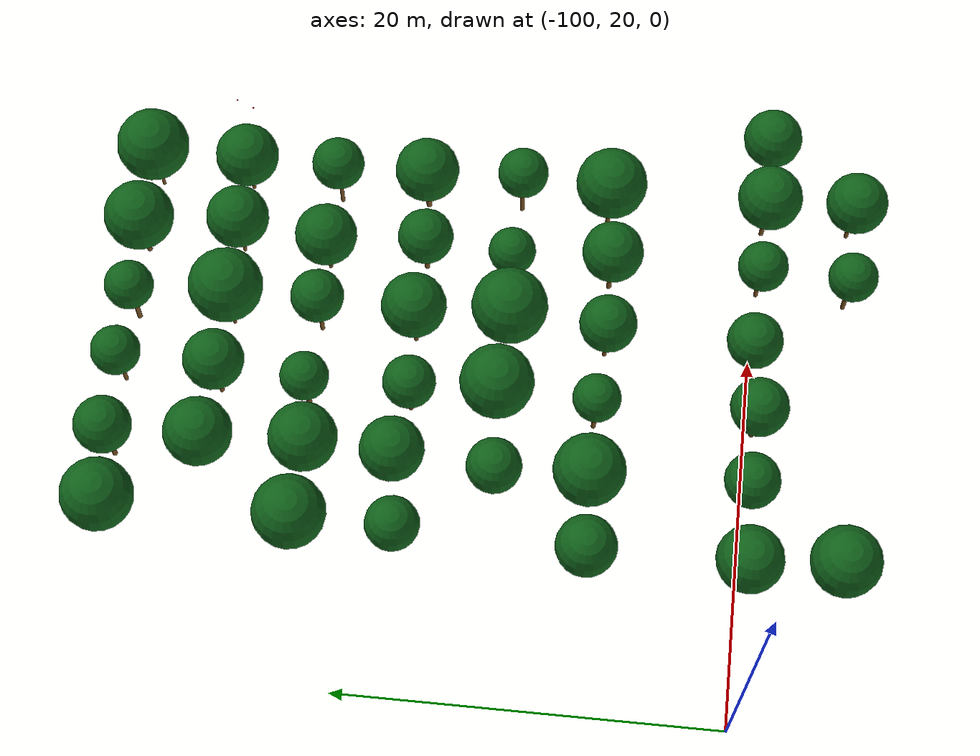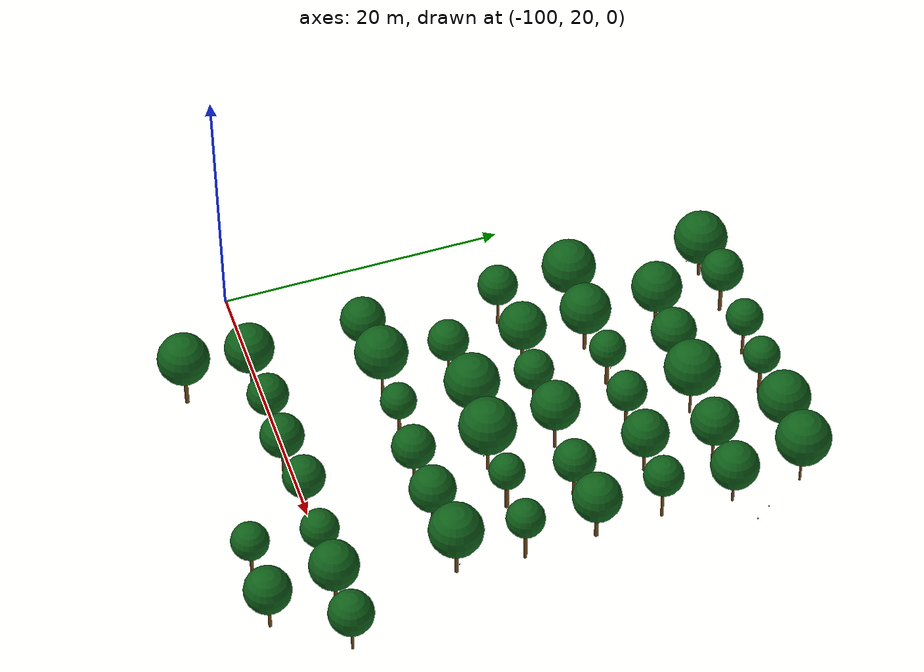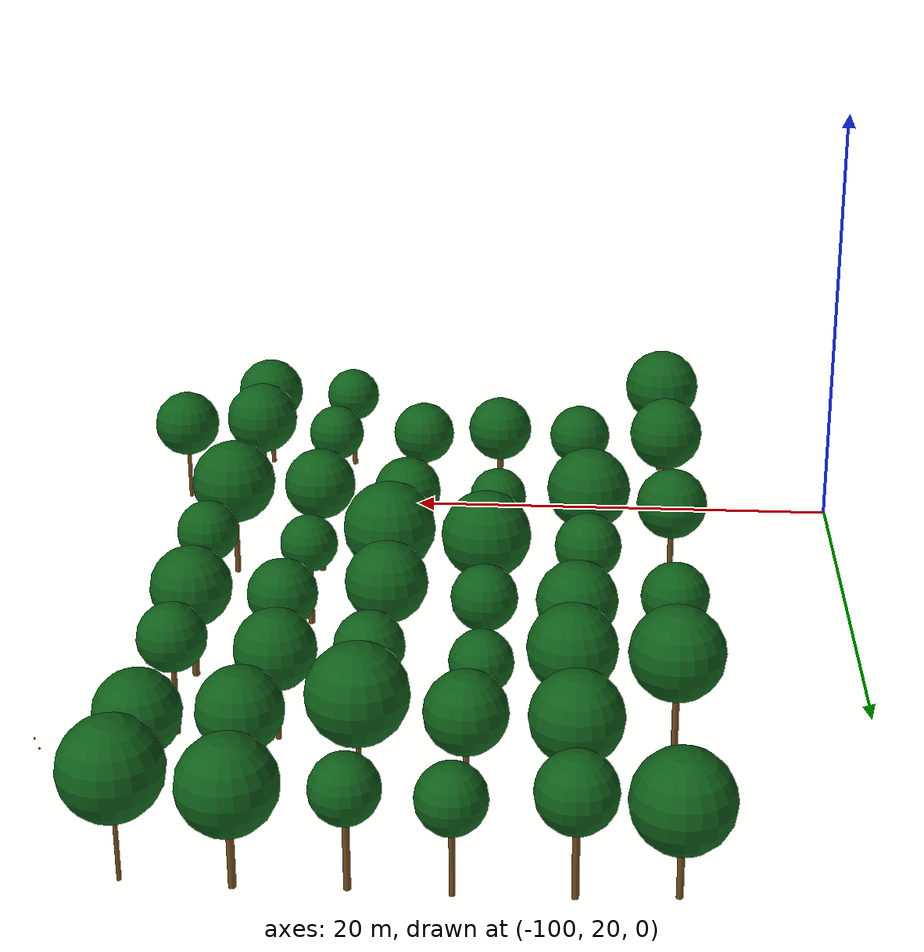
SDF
<sdf version="1.9">
 <world name="cheongsong_orchard">
  <model name="apple_tree_1373">
   <static>true</static>
   <pose>-92.01 14.98 0 0 0 0</pose>
   <link name="link">
    <collision name="trunk_col">
     <pose>0 0 1.40 0 0 0</pose>
     <geometry><cylinder><radius>0.148</radius><length>2.79</length></cylinder></geometry>
    </collision>
    <visual name="trunk_vis">
     <pose>0 0 1.40 0 0 0</pose>
     <geometry><cylinder><radius>0.148</radius><length>2.79</length></cylinder></geometry>
     <material><ambient>0.35 0.22 0.08 1</ambient><diffuse>0.45 0.30 0.12 1</diffuse></material>
    </visual>
    <collision name="canopy_col">
     <pose>0 0 4.61 0 0 0</pose>
     <geometry><sphere><radius>1.82</radius></sphere></geometry>
    </collision>
    <visual name="canopy_vis">
     <pose>0 0 4.61 0 0 0</pose>
     <geometry><sphere><radius>1.82</radius></sphere></geometry>
     <material><ambient>0.04 0.28 0.06 1</ambient><diffuse>0.06 0.38 0.10 1</diffuse></material>
    </visual>
   </link>
  </model>
  <model name="apple_tree_1377">
   <static>true</static>
   <pose>-76.20 15.09 0 0 0 0</pose>
   <link name="link">
    <collision name="trunk_col">
     <pose>0 0 1.27 0 0 0</pose>
     <geometry><cylinder><radius>0.125</radius><length>2.54</length></cylinder></geometry>
    </collision>
    <visual name="trunk_vis">
     <pose>0 0 1.27 0 0 0</pose>
     <geometry><cylinder><radius>0.125</radius><length>2.54</length></cylinder></geometry>
     <material><ambient>0.35 0.22 0.08 1</ambient><diffuse>0.45 0.30 0.12 1</diffuse></material>
    </visual>
    <collision name="canopy_col">
     <pose>0 0 3.85 0 0 0</pose>
     <geometry><sphere><radius>1.31</radius></sphere></geometry>
    </collision>
    <visual name="canopy_vis">
     <pose>0 0 3.85 0 0 0</pose>
     <geometry><sphere><radius>1.31</radius></sphere></geometry>
     <material><ambient>0.04 0.28 0.06 1</ambient><diffuse>0.06 0.38 0.10 1</diffuse></material>
    </visual>
   </link>
  </model>
  <model name="apple_tree_1378">
   <static>true</static>
   <pose>-71.92 15.06 0 0 0 0</pose>
   <link name="link">
    <collision name="trunk_col">
     <pose>0 0 1.16 0 0 0</pose>
     <geometry><cylinder><radius>0.118</radius><length>2.32</length></cylinder></geometry>
    </collision>
    <visual name="trunk_vis">
     <pose>0 0 1.16 0 0 0</pose>
     <geometry><cylinder><radius>0.118</radius><length>2.32</length></cylinder></geometry>
     <material><ambient>0.35 0.22 0.08 1</ambient><diffuse>0.45 0.30 0.12 1</diffuse></material>
    </visual>
    <collision name="canopy_col">
     <pose>0 0 3.95 0 0 0</pose>
     <geometry><sphere><radius>1.63</radius></sphere></geometry>
    </collision>
    <visual name="canopy_vis">
     <pose>0 0 3.95 0 0 0</pose>
     <geometry><sphere><radius>1.63</radius></sphere></geometry>
     <material><ambient>0.04 0.28 0.06 1</ambient><diffuse>0.06 0.38 0.10 1</diffuse></material>
    </visual>
   </link>
  </model>
  <model name="apple_tree_1425">
   <static>true</static>
   <pose>-92.13 19.64 0 0 0 0</pose>
   <link name="link">
    <collision name="trunk_col">
     <pose>0 0 1.08 0 0 0</pose>
     <geometry><cylinder><radius>0.093</radius><length>2.15</length></cylinder></geometry>
    </collision>
    <visual name="trunk_vis">
     <pose>0 0 1.08 0 0 0</pose>
     <geometry><cylinder><radius>0.093</radius><length>2.15</length></cylinder></geometry>
     <material><ambient>0.35 0.22 0.08 1</ambient><diffuse>0.45 0.30 0.12 1</diffuse></material>
    </visual>
    <collision name="canopy_col">
     <pose>0 0 3.90 0 0 0</pose>
     <geometry><sphere><radius>1.74</radius></sphere></geometry>
    </collision>
    <visual name="canopy_vis">
     <pose>0 0 3.90 0 0 0</pose>
     <geometry><sphere><radius>1.74</radius></sphere></geometry>
     <material><ambient>0.04 0.28 0.06 1</ambient><diffuse>0.06 0.38 0.10 1</diffuse></material>
    </visual>
   </link>
  </model>
  <model name="apple_tree_1426">
   <static>true</static>
   <pose>-87.92 19.73 0 0 0 0</pose>
   <link name="link">
    <collision name="trunk_col">
     <pose>0 0 1.15 0 0 0</pose>
     <geometry><cylinder><radius>0.101</radius><length>2.30</length></cylinder></geometry>
    </collision>
    <visual name="trunk_vis">
     <pose>0 0 1.15 0 0 0</pose>
     <geometry><cylinder><radius>0.101</radius><length>2.30</length></cylinder></geometry>
     <material><ambient>0.35 0.22 0.08 1</ambient><diffuse>0.45 0.30 0.12 1</diffuse></material>
    </visual>
    <collision name="canopy_col">
     <pose>0 0 3.75 0 0 0</pose>
     <geometry><sphere><radius>1.45</radius></sphere></geometry>
    </collision>
    <visual name="canopy_vis">
     <pose>0 0 3.75 0 0 0</pose>
     <geometry><sphere><radius>1.45</radius></sphere></geometry>
     <material><ambient>0.04 0.28 0.06 1</ambient><diffuse>0.06 0.38 0.10 1</diffuse></material>
    </visual>
   </link>
  </model>
  <model name="apple_tree_1427">
   <static>true</static>
   <pose>-84.00 19.59 0 0 0 0</pose>
   <link name="link">
    <collision name="trunk_col">
     <pose>0 0 1.22 0 0 0</pose>
     <geometry><cylinder><radius>0.150</radius><length>2.44</length></cylinder></geometry>
    </collision>
    <visual name="trunk_vis">
     <pose>0 0 1.22 0 0 0</pose>
     <geometry><cylinder><radius>0.150</radius><length>2.44</length></cylinder></geometry>
     <material><ambient>0.35 0.22 0.08 1</ambient><diffuse>0.45 0.30 0.12 1</diffuse></material>
    </visual>
    <collision name="canopy_col">
     <pose>0 0 3.97 0 0 0</pose>
     <geometry><sphere><radius>1.53</radius></sphere></geometry>
    </collision>
    <visual name="canopy_vis">
     <pose>0 0 3.97 0 0 0</pose>
     <geometry><sphere><radius>1.53</radius></sphere></geometry>
     <material><ambient>0.04 0.28 0.06 1</ambient><diffuse>0.06 0.38 0.10 1</diffuse></material>
    </visual>
   </link>
  </model>
  <model name="apple_tree_1428">
   <static>true</static>
   <pose>-80.28 20.01 0 0 0 0</pose>
   <link name="link">
    <collision name="trunk_col">
     <pose>0 0 1.18 0 0 0</pose>
     <geometry><cylinder><radius>0.148</radius><length>2.37</length></cylinder></geometry>
    </collision>
    <visual name="trunk_vis">
     <pose>0 0 1.18 0 0 0</pose>
     <geometry><cylinder><radius>0.148</radius><length>2.37</length></cylinder></geometry>
     <material><ambient>0.35 0.22 0.08 1</ambient><diffuse>0.45 0.30 0.12 1</diffuse></material>
    </visual>
    <collision name="canopy_col">
     <pose>0 0 3.83 0 0 0</pose>
     <geometry><sphere><radius>1.47</radius></sphere></geometry>
    </collision>
    <visual name="canopy_vis">
     <pose>0 0 3.83 0 0 0</pose>
     <geometry><sphere><radius>1.47</radius></sphere></geometry>
     <material><ambient>0.04 0.28 0.06 1</ambient><diffuse>0.06 0.38 0.10 1</diffuse></material>
    </visual>
   </link>
  </model>
  <model name="apple_tree_1429">
   <static>true</static>
   <pose>-75.93 19.79 0 0 0 0</pose>
   <link name="link">
    <collision name="trunk_col">
     <pose>0 0 1.16 0 0 0</pose>
     <geometry><cylinder><radius>0.119</radius><length>2.31</length></cylinder></geometry>
    </collision>
    <visual name="trunk_vis">
     <pose>0 0 1.16 0 0 0</pose>
     <geometry><cylinder><radius>0.119</radius><length>2.31</length></cylinder></geometry>
     <material><ambient>0.35 0.22 0.08 1</ambient><diffuse>0.45 0.30 0.12 1</diffuse></material>
    </visual>
    <collision name="canopy_col">
     <pose>0 0 3.64 0 0 0</pose>
     <geometry><sphere><radius>1.33</radius></sphere></geometry>
    </collision>
    <visual name="canopy_vis">
     <pose>0 0 3.64 0 0 0</pose>
     <geometry><sphere><radius>1.33</radius></sphere></geometry>
     <material><ambient>0.04 0.28 0.06 1</ambient><diffuse>0.06 0.38 0.10 1</diffuse></material>
    </visual>
   </link>
  </model>
  <model name="apple_tree_1430">
   <static>true</static>
   <pose>-72.23 19.68 0 0 0 0</pose>
   <link name="link">
    <collision name="trunk_col">
     <pose>0 0 1.30 0 0 0</pose>
     <geometry><cylinder><radius>0.128</radius><length>2.59</length></cylinder></geometry>
    </collision>
    <visual name="trunk_vis">
     <pose>0 0 1.30 0 0 0</pose>
     <geometry><cylinder><radius>0.128</radius><length>2.59</length></cylinder></geometry>
     <material><ambient>0.35 0.22 0.08 1</ambient><diffuse>0.45 0.30 0.12 1</diffuse></material>
    </visual>
    <collision name="canopy_col">
     <pose>0 0 4.30 0 0 0</pose>
     <geometry><sphere><radius>1.71</radius></sphere></geometry>
    </collision>
    <visual name="canopy_vis">
     <pose>0 0 4.30 0 0 0</pose>
     <geometry><sphere><radius>1.71</radius></sphere></geometry>
     <material><ambient>0.04 0.28 0.06 1</ambient><diffuse>0.06 0.38 0.10 1</diffuse></material>
    </visual>
   </link>
  </model>
  <model name="apple_tree_1431">
   <static>true</static>
   <pose>-68.47 19.68 0 0 0 0</pose>
   <link name="link">
    <collision name="trunk_col">
     <pose>0 0 1.18 0 0 0</pose>
     <geometry><cylinder><radius>0.096</radius><length>2.36</length></cylinder></geometry>
    </collision>
    <visual name="trunk_vis">
     <pose>0 0 1.18 0 0 0</pose>
     <geometry><cylinder><radius>0.096</radius><length>2.36</length></cylinder></geometry>
     <material><ambient>0.35 0.22 0.08 1</ambient><diffuse>0.45 0.30 0.12 1</diffuse></material>
    </visual>
    <collision name="canopy_col">
     <pose>0 0 3.92 0 0 0</pose>
     <geometry><sphere><radius>1.56</radius></sphere></geometry>
    </collision>
    <visual name="canopy_vis">
     <pose>0 0 3.92 0 0 0</pose>
     <geometry><sphere><radius>1.56</radius></sphere></geometry>
     <material><ambient>0.04 0.28 0.06 1</ambient><diffuse>0.06 0.38 0.10 1</diffuse></material>
    </visual>
   </link>
  </model>
  <model name="apple_tree_1475">
   <static>true</static>
   <pose>-92.20 27.80 0 0 0 0</pose>
   <link name="link">
    <collision name="trunk_col">
     <pose>0 0 1.11 0 0 0</pose>
     <geometry><cylinder><radius>0.134</radius><length>2.22</length></cylinder></geometry>
    </collision>
    <visual name="trunk_vis">
     <pose>0 0 1.11 0 0 0</pose>
     <geometry><cylinder><radius>0.134</radius><length>2.22</length></cylinder></geometry>
     <material><ambient>0.35 0.22 0.08 1</ambient><diffuse>0.45 0.30 0.12 1</diffuse></material>
    </visual>
    <collision name="canopy_col">
     <pose>0 0 3.81 0 0 0</pose>
     <geometry><sphere><radius>1.59</radius></sphere></geometry>
    </collision>
    <visual name="canopy_vis">
     <pose>0 0 3.81 0 0 0</pose>
     <geometry><sphere><radius>1.59</radius></sphere></geometry>
     <material><ambient>0.04 0.28 0.06 1</ambient><diffuse>0.06 0.38 0.10 1</diffuse></material>
    </visual>
   </link>
  </model>
  <model name="apple_tree_1476">
   <static>true</static>
   <pose>-88.43 27.97 0 0 0 0</pose>
   <link name="link">
    <collision name="trunk_col">
     <pose>0 0 1.32 0 0 0</pose>
     <geometry><cylinder><radius>0.105</radius><length>2.64</length></cylinder></geometry>
    </collision>
    <visual name="trunk_vis">
     <pose>0 0 1.32 0 0 0</pose>
     <geometry><cylinder><radius>0.105</radius><length>2.64</length></cylinder></geometry>
     <material><ambient>0.35 0.22 0.08 1</ambient><diffuse>0.45 0.30 0.12 1</diffuse></material>
    </visual>
    <collision name="canopy_col">
     <pose>0 0 4.51 0 0 0</pose>
     <geometry><sphere><radius>1.87</radius></sphere></geometry>
    </collision>
    <visual name="canopy_vis">
     <pose>0 0 4.51 0 0 0</pose>
     <geometry><sphere><radius>1.87</radius></sphere></geometry>
     <material><ambient>0.04 0.28 0.06 1</ambient><diffuse>0.06 0.38 0.10 1</diffuse></material>
    </visual>
   </link>
  </model>
  <model name="apple_tree_1477">
   <static>true</static>
   <pose>-84.34 27.90 0 0 0 0</pose>
   <link name="link">
    <collision name="trunk_col">
     <pose>0 0 1.39 0 0 0</pose>
     <geometry><cylinder><radius>0.129</radius><length>2.78</length></cylinder></geometry>
    </collision>
    <visual name="trunk_vis">
     <pose>0 0 1.39 0 0 0</pose>
     <geometry><cylinder><radius>0.129</radius><length>2.78</length></cylinder></geometry>
     <material><ambient>0.35 0.22 0.08 1</ambient><diffuse>0.45 0.30 0.12 1</diffuse></material>
    </visual>
    <collision name="canopy_col">
     <pose>0 0 4.04 0 0 0</pose>
     <geometry><sphere><radius>1.26</radius></sphere></geometry>
    </collision>
    <visual name="canopy_vis">
     <pose>0 0 4.04 0 0 0</pose>
     <geometry><sphere><radius>1.26</radius></sphere></geometry>
     <material><ambient>0.04 0.28 0.06 1</ambient><diffuse>0.06 0.38 0.10 1</diffuse></material>
    </visual>
   </link>
  </model>
  <model name="apple_tree_1478">
   <static>true</static>
   <pose>-80.19 27.64 0 0 0 0</pose>
   <link name="link">
    <collision name="trunk_col">
     <pose>0 0 1.30 0 0 0</pose>
     <geometry><cylinder><radius>0.113</radius><length>2.60</length></cylinder></geometry>
    </collision>
    <visual name="trunk_vis">
     <pose>0 0 1.30 0 0 0</pose>
     <geometry><cylinder><radius>0.113</radius><length>2.60</length></cylinder></geometry>
     <material><ambient>0.35 0.22 0.08 1</ambient><diffuse>0.45 0.30 0.12 1</diffuse></material>
    </visual>
    <collision name="canopy_col">
     <pose>0 0 4.11 0 0 0</pose>
     <geometry><sphere><radius>1.51</radius></sphere></geometry>
    </collision>
    <visual name="canopy_vis">
     <pose>0 0 4.11 0 0 0</pose>
     <geometry><sphere><radius>1.51</radius></sphere></geometry>
     <material><ambient>0.04 0.28 0.06 1</ambient><diffuse>0.06 0.38 0.10 1</diffuse></material>
    </visual>
   </link>
  </model>
  <model name="apple_tree_1479">
   <static>true</static>
   <pose>-76.20 27.71 0 0 0 0</pose>
   <link name="link">
    <collision name="trunk_col">
     <pose>0 0 1.37 0 0 0</pose>
     <geometry><cylinder><radius>0.133</radius><length>2.74</length></cylinder></geometry>
    </collision>
    <visual name="trunk_vis">
     <pose>0 0 1.37 0 0 0</pose>
     <geometry><cylinder><radius>0.133</radius><length>2.74</length></cylinder></geometry>
     <material><ambient>0.35 0.22 0.08 1</ambient><diffuse>0.45 0.30 0.12 1</diffuse></material>
    </visual>
    <collision name="canopy_col">
     <pose>0 0 4.35 0 0 0</pose>
     <geometry><sphere><radius>1.61</radius></sphere></geometry>
    </collision>
    <visual name="canopy_vis">
     <pose>0 0 4.35 0 0 0</pose>
     <geometry><sphere><radius>1.61</radius></sphere></geometry>
     <material><ambient>0.04 0.28 0.06 1</ambient><diffuse>0.06 0.38 0.10 1</diffuse></material>
    </visual>
   </link>
  </model>
  <model name="apple_tree_1480">
   <static>true</static>
   <pose>-72.30 28.08 0 0 0 0</pose>
   <link name="link">
    <collision name="trunk_col">
     <pose>0 0 1.32 0 0 0</pose>
     <geometry><cylinder><radius>0.126</radius><length>2.64</length></cylinder></geometry>
    </collision>
    <visual name="trunk_vis">
     <pose>0 0 1.32 0 0 0</pose>
     <geometry><cylinder><radius>0.126</radius><length>2.64</length></cylinder></geometry>
     <material><ambient>0.35 0.22 0.08 1</ambient><diffuse>0.45 0.30 0.12 1</diffuse></material>
    </visual>
    <collision name="canopy_col">
     <pose>0 0 4.52 0 0 0</pose>
     <geometry><sphere><radius>1.88</radius></sphere></geometry>
    </collision>
    <visual name="canopy_vis">
     <pose>0 0 4.52 0 0 0</pose>
     <geometry><sphere><radius>1.88</radius></sphere></geometry>
     <material><ambient>0.04 0.28 0.06 1</ambient><diffuse>0.06 0.38 0.10 1</diffuse></material>
    </visual>
   </link>
  </model>
  <model name="apple_tree_1528">
   <static>true</static>
   <pose>-88.47 32.78 0 0 0 0</pose>
   <link name="link">
    <collision name="trunk_col">
     <pose>0 0 1.25 0 0 0</pose>
     <geometry><cylinder><radius>0.081</radius><length>2.50</length></cylinder></geometry>
    </collision>
    <visual name="trunk_vis">
     <pose>0 0 1.25 0 0 0</pose>
     <geometry><cylinder><radius>0.081</radius><length>2.50</length></cylinder></geometry>
     <material><ambient>0.35 0.22 0.08 1</ambient><diffuse>0.45 0.30 0.12 1</diffuse></material>
    </visual>
    <collision name="canopy_col">
     <pose>0 0 3.94 0 0 0</pose>
     <geometry><sphere><radius>1.44</radius></sphere></geometry>
    </collision>
    <visual name="canopy_vis">
     <pose>0 0 3.94 0 0 0</pose>
     <geometry><sphere><radius>1.44</radius></sphere></geometry>
     <material><ambient>0.04 0.28 0.06 1</ambient><diffuse>0.06 0.38 0.10 1</diffuse></material>
    </visual>
   </link>
  </model>
  <model name="apple_tree_1529">
   <static>true</static>
   <pose>-84.10 33.05 0 0 0 0</pose>
   <link name="link">
    <collision name="trunk_col">
     <pose>0 0 1.28 0 0 0</pose>
     <geometry><cylinder><radius>0.083</radius><length>2.55</length></cylinder></geometry>
    </collision>
    <visual name="trunk_vis">
     <pose>0 0 1.28 0 0 0</pose>
     <geometry><cylinder><radius>0.083</radius><length>2.55</length></cylinder></geometry>
     <material><ambient>0.35 0.22 0.08 1</ambient><diffuse>0.45 0.30 0.12 1</diffuse></material>
    </visual>
    <collision name="canopy_col">
     <pose>0 0 4.48 0 0 0</pose>
     <geometry><sphere><radius>1.93</radius></sphere></geometry>
    </collision>
    <visual name="canopy_vis">
     <pose>0 0 4.48 0 0 0</pose>
     <geometry><sphere><radius>1.93</radius></sphere></geometry>
     <material><ambient>0.04 0.28 0.06 1</ambient><diffuse>0.06 0.38 0.10 1</diffuse></material>
    </visual>
   </link>
  </model>
  <model name="apple_tree_1530">
   <static>true</static>
   <pose>-79.91 32.79 0 0 0 0</pose>
   <link name="link">
    <collision name="trunk_col">
     <pose>0 0 1.33 0 0 0</pose>
     <geometry><cylinder><radius>0.099</radius><length>2.65</length></cylinder></geometry>
    </collision>
    <visual name="trunk_vis">
     <pose>0 0 1.33 0 0 0</pose>
     <geometry><cylinder><radius>0.099</radius><length>2.65</length></cylinder></geometry>
     <material><ambient>0.35 0.22 0.08 1</ambient><diffuse>0.45 0.30 0.12 1</diffuse></material>
    </visual>
    <collision name="canopy_col">
     <pose>0 0 4.64 0 0 0</pose>
     <geometry><sphere><radius>1.99</radius></sphere></geometry>
    </collision>
    <visual name="canopy_vis">
     <pose>0 0 4.64 0 0 0</pose>
     <geometry><sphere><radius>1.99</radius></sphere></geometry>
     <material><ambient>0.04 0.28 0.06 1</ambient><diffuse>0.06 0.38 0.10 1</diffuse></material>
    </visual>
   </link>
  </model>
  <model name="apple_tree_1531">
   <static>true</static>
   <pose>-76.41 32.98 0 0 0 0</pose>
   <link name="link">
    <collision name="trunk_col">
     <pose>0 0 1.30 0 0 0</pose>
     <geometry><cylinder><radius>0.145</radius><length>2.59</length></cylinder></geometry>
    </collision>
    <visual name="trunk_vis">
     <pose>0 0 1.30 0 0 0</pose>
     <geometry><cylinder><radius>0.145</radius><length>2.59</length></cylinder></geometry>
     <material><ambient>0.35 0.22 0.08 1</ambient><diffuse>0.45 0.30 0.12 1</diffuse></material>
    </visual>
    <collision name="canopy_col">
     <pose>0 0 3.85 0 0 0</pose>
     <geometry><sphere><radius>1.25</radius></sphere></geometry>
    </collision>
    <visual name="canopy_vis">
     <pose>0 0 3.85 0 0 0</pose>
     <geometry><sphere><radius>1.25</radius></sphere></geometry>
     <material><ambient>0.04 0.28 0.06 1</ambient><diffuse>0.06 0.38 0.10 1</diffuse></material>
    </visual>
   </link>
  </model>
  <model name="apple_tree_1532">
   <static>true</static>
   <pose>-71.99 32.80 0 0 0 0</pose>
   <link name="link">
    <collision name="trunk_col">
     <pose>0 0 1.44 0 0 0</pose>
     <geometry><cylinder><radius>0.122</radius><length>2.89</length></cylinder></geometry>
    </collision>
    <visual name="trunk_vis">
     <pose>0 0 1.44 0 0 0</pose>
     <geometry><cylinder><radius>0.122</radius><length>2.89</length></cylinder></geometry>
     <material><ambient>0.35 0.22 0.08 1</ambient><diffuse>0.45 0.30 0.12 1</diffuse></material>
    </visual>
    <collision name="canopy_col">
     <pose>0 0 4.23 0 0 0</pose>
     <geometry><sphere><radius>1.34</radius></sphere></geometry>
    </collision>
    <visual name="canopy_vis">
     <pose>0 0 4.23 0 0 0</pose>
     <geometry><sphere><radius>1.34</radius></sphere></geometry>
     <material><ambient>0.04 0.28 0.06 1</ambient><diffuse>0.06 0.38 0.10 1</diffuse></material>
    </visual>
   </link>
  </model>
  <model name="apple_tree_1581">
   <static>true</static>
   <pose>-92.06 37.55 0 0 0 0</pose>
   <link name="link">
    <collision name="trunk_col">
     <pose>0 0 1.32 0 0 0</pose>
     <geometry><cylinder><radius>0.098</radius><length>2.65</length></cylinder></geometry>
    </collision>
    <visual name="trunk_vis">
     <pose>0 0 1.32 0 0 0</pose>
     <geometry><cylinder><radius>0.098</radius><length>2.65</length></cylinder></geometry>
     <material><ambient>0.35 0.22 0.08 1</ambient><diffuse>0.45 0.30 0.12 1</diffuse></material>
    </visual>
    <collision name="canopy_col">
     <pose>0 0 4.05 0 0 0</pose>
     <geometry><sphere><radius>1.41</radius></sphere></geometry>
    </collision>
    <visual name="canopy_vis">
     <pose>0 0 4.05 0 0 0</pose>
     <geometry><sphere><radius>1.41</radius></sphere></geometry>
     <material><ambient>0.04 0.28 0.06 1</ambient><diffuse>0.06 0.38 0.10 1</diffuse></material>
    </visual>
   </link>
  </model>
  <model name="apple_tree_1582">
   <static>true</static>
   <pose>-88.08 38.02 0 0 0 0</pose>
   <link name="link">
    <collision name="trunk_col">
     <pose>0 0 1.15 0 0 0</pose>
     <geometry><cylinder><radius>0.130</radius><length>2.29</length></cylinder></geometry>
    </collision>
    <visual name="trunk_vis">
     <pose>0 0 1.15 0 0 0</pose>
     <geometry><cylinder><radius>0.130</radius><length>2.29</length></cylinder></geometry>
     <material><ambient>0.35 0.22 0.08 1</ambient><diffuse>0.45 0.30 0.12 1</diffuse></material>
    </visual>
    <collision name="canopy_col">
     <pose>0 0 3.97 0 0 0</pose>
     <geometry><sphere><radius>1.68</radius></sphere></geometry>
    </collision>
    <visual name="canopy_vis">
     <pose>0 0 3.97 0 0 0</pose>
     <geometry><sphere><radius>1.68</radius></sphere></geometry>
     <material><ambient>0.04 0.28 0.06 1</ambient><diffuse>0.06 0.38 0.10 1</diffuse></material>
    </visual>
   </link>
  </model>
  <model name="apple_tree_1583">
   <static>true</static>
   <pose>-84.28 37.56 0 0 0 0</pose>
   <link name="link">
    <collision name="trunk_col">
     <pose>0 0 1.19 0 0 0</pose>
     <geometry><cylinder><radius>0.116</radius><length>2.38</length></cylinder></geometry>
    </collision>
    <visual name="trunk_vis">
     <pose>0 0 1.19 0 0 0</pose>
     <geometry><cylinder><radius>0.116</radius><length>2.38</length></cylinder></geometry>
     <material><ambient>0.35 0.22 0.08 1</ambient><diffuse>0.45 0.30 0.12 1</diffuse></material>
    </visual>
    <collision name="canopy_col">
     <pose>0 0 3.77 0 0 0</pose>
     <geometry><sphere><radius>1.39</radius></sphere></geometry>
    </collision>
    <visual name="canopy_vis">
     <pose>0 0 3.77 0 0 0</pose>
     <geometry><sphere><radius>1.39</radius></sphere></geometry>
     <material><ambient>0.04 0.28 0.06 1</ambient><diffuse>0.06 0.38 0.10 1</diffuse></material>
    </visual>
   </link>
  </model>
  <model name="apple_tree_1584">
   <static>true</static>
   <pose>-80.29 37.73 0 0 0 0</pose>
   <link name="link">
    <collision name="trunk_col">
     <pose>0 0 1.38 0 0 0</pose>
     <geometry><cylinder><radius>0.109</radius><length>2.75</length></cylinder></geometry>
    </collision>
    <visual name="trunk_vis">
     <pose>0 0 1.38 0 0 0</pose>
     <geometry><cylinder><radius>0.109</radius><length>2.75</length></cylinder></geometry>
     <material><ambient>0.35 0.22 0.08 1</ambient><diffuse>0.45 0.30 0.12 1</diffuse></material>
    </visual>
    <collision name="canopy_col">
     <pose>0 0 4.47 0 0 0</pose>
     <geometry><sphere><radius>1.71</radius></sphere></geometry>
    </collision>
    <visual name="canopy_vis">
     <pose>0 0 4.47 0 0 0</pose>
     <geometry><sphere><radius>1.71</radius></sphere></geometry>
     <material><ambient>0.04 0.28 0.06 1</ambient><diffuse>0.06 0.38 0.10 1</diffuse></material>
    </visual>
   </link>
  </model>
  <model name="apple_tree_1585">
   <static>true</static>
   <pose>-75.96 37.60 0 0 0 0</pose>
   <link name="link">
    <collision name="trunk_col">
     <pose>0 0 1.13 0 0 0</pose>
     <geometry><cylinder><radius>0.135</radius><length>2.27</length></cylinder></geometry>
    </collision>
    <visual name="trunk_vis">
     <pose>0 0 1.13 0 0 0</pose>
     <geometry><cylinder><radius>0.135</radius><length>2.27</length></cylinder></geometry>
     <material><ambient>0.35 0.22 0.08 1</ambient><diffuse>0.45 0.30 0.12 1</diffuse></material>
    </visual>
    <collision name="canopy_col">
     <pose>0 0 3.74 0 0 0</pose>
     <geometry><sphere><radius>1.47</radius></sphere></geometry>
    </collision>
    <visual name="canopy_vis">
     <pose>0 0 3.74 0 0 0</pose>
     <geometry><sphere><radius>1.47</radius></sphere></geometry>
     <material><ambient>0.04 0.28 0.06 1</ambient><diffuse>0.06 0.38 0.10 1</diffuse></material>
    </visual>
   </link>
  </model>
  <model name="apple_tree_1586">
   <static>true</static>
   <pose>-72.24 37.90 0 0 0 0</pose>
   <link name="link">
    <collision name="trunk_col">
     <pose>0 0 1.20 0 0 0</pose>
     <geometry><cylinder><radius>0.148</radius><length>2.41</length></cylinder></geometry>
    </collision>
    <visual name="trunk_vis">
     <pose>0 0 1.20 0 0 0</pose>
     <geometry><cylinder><radius>0.148</radius><length>2.41</length></cylinder></geometry>
     <material><ambient>0.35 0.22 0.08 1</ambient><diffuse>0.45 0.30 0.12 1</diffuse></material>
    </visual>
    <collision name="canopy_col">
     <pose>0 0 4.11 0 0 0</pose>
     <geometry><sphere><radius>1.70</radius></sphere></geometry>
    </collision>
    <visual name="canopy_vis">
     <pose>0 0 4.11 0 0 0</pose>
     <geometry><sphere><radius>1.70</radius></sphere></geometry>
     <material><ambient>0.04 0.28 0.06 1</ambient><diffuse>0.06 0.38 0.10 1</diffuse></material>
    </visual>
   </link>
  </model>
  <model name="apple_tree_1638">
   <static>true</static>
   <pose>-92.00 42.74 0 0 0 0</pose>
   <link name="link">
    <collision name="trunk_col">
     <pose>0 0 1.17 0 0 0</pose>
     <geometry><cylinder><radius>0.137</radius><length>2.34</length></cylinder></geometry>
    </collision>
    <visual name="trunk_vis">
     <pose>0 0 1.17 0 0 0</pose>
     <geometry><cylinder><radius>0.137</radius><length>2.34</length></cylinder></geometry>
     <material><ambient>0.35 0.22 0.08 1</ambient><diffuse>0.45 0.30 0.12 1</diffuse></material>
    </visual>
    <collision name="canopy_col">
     <pose>0 0 4.24 0 0 0</pose>
     <geometry><sphere><radius>1.90</radius></sphere></geometry>
    </collision>
    <visual name="canopy_vis">
     <pose>0 0 4.24 0 0 0</pose>
     <geometry><sphere><radius>1.90</radius></sphere></geometry>
     <material><ambient>0.04 0.28 0.06 1</ambient><diffuse>0.06 0.38 0.10 1</diffuse></material>
    </visual>
   </link>
  </model>
  <model name="apple_tree_1639">
   <static>true</static>
   <pose>-87.97 42.56 0 0 0 0</pose>
   <link name="link">
    <collision name="trunk_col">
     <pose>0 0 1.22 0 0 0</pose>
     <geometry><cylinder><radius>0.129</radius><length>2.44</length></cylinder></geometry>
    </collision>
    <visual name="trunk_vis">
     <pose>0 0 1.22 0 0 0</pose>
     <geometry><cylinder><radius>0.129</radius><length>2.44</length></cylinder></geometry>
     <material><ambient>0.35 0.22 0.08 1</ambient><diffuse>0.45 0.30 0.12 1</diffuse></material>
    </visual>
    <collision name="canopy_col">
     <pose>0 0 4.23 0 0 0</pose>
     <geometry><sphere><radius>1.79</radius></sphere></geometry>
    </collision>
    <visual name="canopy_vis">
     <pose>0 0 4.23 0 0 0</pose>
     <geometry><sphere><radius>1.79</radius></sphere></geometry>
     <material><ambient>0.04 0.28 0.06 1</ambient><diffuse>0.06 0.38 0.10 1</diffuse></material>
    </visual>
   </link>
  </model>
  <model name="apple_tree_1640">
   <static>true</static>
   <pose>-84.48 42.96 0 0 0 0</pose>
   <link name="link">
    <collision name="trunk_col">
     <pose>0 0 1.24 0 0 0</pose>
     <geometry><cylinder><radius>0.144</radius><length>2.48</length></cylinder></geometry>
    </collision>
    <visual name="trunk_vis">
     <pose>0 0 1.24 0 0 0</pose>
     <geometry><cylinder><radius>0.144</radius><length>2.48</length></cylinder></geometry>
     <material><ambient>0.35 0.22 0.08 1</ambient><diffuse>0.45 0.30 0.12 1</diffuse></material>
    </visual>
    <collision name="canopy_col">
     <pose>0 0 3.75 0 0 0</pose>
     <geometry><sphere><radius>1.28</radius></sphere></geometry>
    </collision>
    <visual name="canopy_vis">
     <pose>0 0 3.75 0 0 0</pose>
     <geometry><sphere><radius>1.28</radius></sphere></geometry>
     <material><ambient>0.04 0.28 0.06 1</ambient><diffuse>0.06 0.38 0.10 1</diffuse></material>
    </visual>
   </link>
  </model>
  <model name="apple_tree_1641">
   <static>true</static>
   <pose>-80.15 42.80 0 0 0 0</pose>
   <link name="link">
    <collision name="trunk_col">
     <pose>0 0 1.42 0 0 0</pose>
     <geometry><cylinder><radius>0.117</radius><length>2.83</length></cylinder></geometry>
    </collision>
    <visual name="trunk_vis">
     <pose>0 0 1.42 0 0 0</pose>
     <geometry><cylinder><radius>0.117</radius><length>2.83</length></cylinder></geometry>
     <material><ambient>0.35 0.22 0.08 1</ambient><diffuse>0.45 0.30 0.12 1</diffuse></material>
    </visual>
    <collision name="canopy_col">
     <pose>0 0 4.23 0 0 0</pose>
     <geometry><sphere><radius>1.40</radius></sphere></geometry>
    </collision>
    <visual name="canopy_vis">
     <pose>0 0 4.23 0 0 0</pose>
     <geometry><sphere><radius>1.40</radius></sphere></geometry>
     <material><ambient>0.04 0.28 0.06 1</ambient><diffuse>0.06 0.38 0.10 1</diffuse></material>
    </visual>
   </link>
  </model>
  <model name="apple_tree_1642">
   <static>true</static>
   <pose>-76.48 42.81 0 0 0 0</pose>
   <link name="link">
    <collision name="trunk_col">
     <pose>0 0 1.17 0 0 0</pose>
     <geometry><cylinder><radius>0.106</radius><length>2.33</length></cylinder></geometry>
    </collision>
    <visual name="trunk_vis">
     <pose>0 0 1.17 0 0 0</pose>
     <geometry><cylinder><radius>0.106</radius><length>2.33</length></cylinder></geometry>
     <material><ambient>0.35 0.22 0.08 1</ambient><diffuse>0.45 0.30 0.12 1</diffuse></material>
    </visual>
    <collision name="canopy_col">
     <pose>0 0 3.97 0 0 0</pose>
     <geometry><sphere><radius>1.64</radius></sphere></geometry>
    </collision>
    <visual name="canopy_vis">
     <pose>0 0 3.97 0 0 0</pose>
     <geometry><sphere><radius>1.64</radius></sphere></geometry>
     <material><ambient>0.04 0.28 0.06 1</ambient><diffuse>0.06 0.38 0.10 1</diffuse></material>
    </visual>
   </link>
  </model>
  <model name="apple_tree_1643">
   <static>true</static>
   <pose>-72.42 42.64 0 0 0 0</pose>
   <link name="link">
    <collision name="trunk_col">
     <pose>0 0 1.45 0 0 0</pose>
     <geometry><cylinder><radius>0.108</radius><length>2.90</length></cylinder></geometry>
    </collision>
    <visual name="trunk_vis">
     <pose>0 0 1.45 0 0 0</pose>
     <geometry><cylinder><radius>0.108</radius><length>2.90</length></cylinder></geometry>
     <material><ambient>0.35 0.22 0.08 1</ambient><diffuse>0.45 0.30 0.12 1</diffuse></material>
    </visual>
    <collision name="canopy_col">
     <pose>0 0 4.29 0 0 0</pose>
     <geometry><sphere><radius>1.39</radius></sphere></geometry>
    </collision>
    <visual name="canopy_vis">
     <pose>0 0 4.29 0 0 0</pose>
     <geometry><sphere><radius>1.39</radius></sphere></geometry>
     <material><ambient>0.04 0.28 0.06 1</ambient><diffuse>0.06 0.38 0.10 1</diffuse></material>
    </visual>
   </link>
  </model>
  <model name="apple_tree_1695">
   <static>true</static>
   <pose>-88.23 47.88 0 0 0 0</pose>
   <link name="link">
    <collision name="trunk_col">
     <pose>0 0 1.26 0 0 0</pose>
     <geometry><cylinder><radius>0.129</radius><length>2.53</length></cylinder></geometry>
    </collision>
    <visual name="trunk_vis">
     <pose>0 0 1.26 0 0 0</pose>
     <geometry><cylinder><radius>0.129</radius><length>2.53</length></cylinder></geometry>
     <material><ambient>0.35 0.22 0.08 1</ambient><diffuse>0.45 0.30 0.12 1</diffuse></material>
    </visual>
    <collision name="canopy_col">
     <pose>0 0 4.31 0 0 0</pose>
     <geometry><sphere><radius>1.78</radius></sphere></geometry>
    </collision>
    <visual name="canopy_vis">
     <pose>0 0 4.31 0 0 0</pose>
     <geometry><sphere><radius>1.78</radius></sphere></geometry>
     <material><ambient>0.04 0.28 0.06 1</ambient><diffuse>0.06 0.38 0.10 1</diffuse></material>
    </visual>
   </link>
  </model>
  <model name="apple_tree_1696">
   <static>true</static>
   <pose>-84.21 47.66 0 0 0 0</pose>
   <link name="link">
    <collision name="trunk_col">
     <pose>0 0 1.33 0 0 0</pose>
     <geometry><cylinder><radius>0.122</radius><length>2.66</length></cylinder></geometry>
    </collision>
    <visual name="trunk_vis">
     <pose>0 0 1.33 0 0 0</pose>
     <geometry><cylinder><radius>0.122</radius><length>2.66</length></cylinder></geometry>
     <material><ambient>0.35 0.22 0.08 1</ambient><diffuse>0.45 0.30 0.12 1</diffuse></material>
    </visual>
    <collision name="canopy_col">
     <pose>0 0 4.24 0 0 0</pose>
     <geometry><sphere><radius>1.59</radius></sphere></geometry>
    </collision>
    <visual name="canopy_vis">
     <pose>0 0 4.24 0 0 0</pose>
     <geometry><sphere><radius>1.59</radius></sphere></geometry>
     <material><ambient>0.04 0.28 0.06 1</ambient><diffuse>0.06 0.38 0.10 1</diffuse></material>
    </visual>
   </link>
  </model>
  <model name="apple_tree_1697">
   <static>true</static>
   <pose>-80.25 47.53 0 0 0 0</pose>
   <link name="link">
    <collision name="trunk_col">
     <pose>0 0 1.43 0 0 0</pose>
     <geometry><cylinder><radius>0.096</radius><length>2.86</length></cylinder></geometry>
    </collision>
    <visual name="trunk_vis">
     <pose>0 0 1.43 0 0 0</pose>
     <geometry><cylinder><radius>0.096</radius><length>2.86</length></cylinder></geometry>
     <material><ambient>0.35 0.22 0.08 1</ambient><diffuse>0.45 0.30 0.12 1</diffuse></material>
    </visual>
    <collision name="canopy_col">
     <pose>0 0 4.80 0 0 0</pose>
     <geometry><sphere><radius>1.95</radius></sphere></geometry>
    </collision>
    <visual name="canopy_vis">
     <pose>0 0 4.80 0 0 0</pose>
     <geometry><sphere><radius>1.95</radius></sphere></geometry>
     <material><ambient>0.04 0.28 0.06 1</ambient><diffuse>0.06 0.38 0.10 1</diffuse></material>
    </visual>
   </link>
  </model>
  <model name="apple_tree_1698">
   <static>true</static>
   <pose>-75.93 47.58 0 0 0 0</pose>
   <link name="link">
    <collision name="trunk_col">
     <pose>0 0 1.18 0 0 0</pose>
     <geometry><cylinder><radius>0.099</radius><length>2.37</length></cylinder></geometry>
    </collision>
    <visual name="trunk_vis">
     <pose>0 0 1.18 0 0 0</pose>
     <geometry><cylinder><radius>0.099</radius><length>2.37</length></cylinder></geometry>
     <material><ambient>0.35 0.22 0.08 1</ambient><diffuse>0.45 0.30 0.12 1</diffuse></material>
    </visual>
    <collision name="canopy_col">
     <pose>0 0 4.03 0 0 0</pose>
     <geometry><sphere><radius>1.66</radius></sphere></geometry>
    </collision>
    <visual name="canopy_vis">
     <pose>0 0 4.03 0 0 0</pose>
     <geometry><sphere><radius>1.66</radius></sphere></geometry>
     <material><ambient>0.04 0.28 0.06 1</ambient><diffuse>0.06 0.38 0.10 1</diffuse></material>
    </visual>
   </link>
  </model>
  <model name="apple_tree_1699">
   <static>true</static>
   <pose>-72.13 47.61 0 0 0 0</pose>
   <link name="link">
    <collision name="trunk_col">
     <pose>0 0 1.06 0 0 0</pose>
     <geometry><cylinder><radius>0.101</radius><length>2.11</length></cylinder></geometry>
    </collision>
    <visual name="trunk_vis">
     <pose>0 0 1.06 0 0 0</pose>
     <geometry><cylinder><radius>0.101</radius><length>2.11</length></cylinder></geometry>
     <material><ambient>0.35 0.22 0.08 1</ambient><diffuse>0.45 0.30 0.12 1</diffuse></material>
    </visual>
    <collision name="canopy_col">
     <pose>0 0 3.79 0 0 0</pose>
     <geometry><sphere><radius>1.68</radius></sphere></geometry>
    </collision>
    <visual name="canopy_vis">
     <pose>0 0 3.79 0 0 0</pose>
     <geometry><sphere><radius>1.68</radius></sphere></geometry>
     <material><ambient>0.04 0.28 0.06 1</ambient><diffuse>0.06 0.38 0.10 1</diffuse></material>
    </visual>
   </link>
  </model>
  <model name="apple_tree_1750">
   <static>true</static>
   <pose>-91.91 52.51 0 0 0 0</pose>
   <link name="link">
    <collision name="trunk_col">
     <pose>0 0 0.99 0 0 0</pose>
     <geometry><cylinder><radius>0.127</radius><length>1.98</length></cylinder></geometry>
    </collision>
    <visual name="trunk_vis">
     <pose>0 0 0.99 0 0 0</pose>
     <geometry><cylinder><radius>0.127</radius><length>1.98</length></cylinder></geometry>
     <material><ambient>0.35 0.22 0.08 1</ambient><diffuse>0.45 0.30 0.12 1</diffuse></material>
    </visual>
    <collision name="canopy_col">
     <pose>0 0 3.88 0 0 0</pose>
     <geometry><sphere><radius>1.89</radius></sphere></geometry>
    </collision>
    <visual name="canopy_vis">
     <pose>0 0 3.88 0 0 0</pose>
     <geometry><sphere><radius>1.89</radius></sphere></geometry>
     <material><ambient>0.04 0.28 0.06 1</ambient><diffuse>0.06 0.38 0.10 1</diffuse></material>
    </visual>
   </link>
  </model>
  <model name="apple_tree_1751">
   <static>true</static>
   <pose>-88.31 52.75 0 0 0 0</pose>
   <link name="link">
    <collision name="trunk_col">
     <pose>0 0 1.38 0 0 0</pose>
     <geometry><cylinder><radius>0.134</radius><length>2.75</length></cylinder></geometry>
    </collision>
    <visual name="trunk_vis">
     <pose>0 0 1.38 0 0 0</pose>
     <geometry><cylinder><radius>0.134</radius><length>2.75</length></cylinder></geometry>
     <material><ambient>0.35 0.22 0.08 1</ambient><diffuse>0.45 0.30 0.12 1</diffuse></material>
    </visual>
    <collision name="canopy_col">
     <pose>0 0 4.24 0 0 0</pose>
     <geometry><sphere><radius>1.49</radius></sphere></geometry>
    </collision>
    <visual name="canopy_vis">
     <pose>0 0 4.24 0 0 0</pose>
     <geometry><sphere><radius>1.49</radius></sphere></geometry>
     <material><ambient>0.04 0.28 0.06 1</ambient><diffuse>0.06 0.38 0.10 1</diffuse></material>
    </visual>
   </link>
  </model>
  <model name="apple_tree_1752">
   <static>true</static>
   <pose>-84.06 52.82 0 0 0 0</pose>
   <link name="link">
    <collision name="trunk_col">
     <pose>0 0 1.29 0 0 0</pose>
     <geometry><cylinder><radius>0.110</radius><length>2.58</length></cylinder></geometry>
    </collision>
    <visual name="trunk_vis">
     <pose>0 0 1.29 0 0 0</pose>
     <geometry><cylinder><radius>0.110</radius><length>2.58</length></cylinder></geometry>
     <material><ambient>0.35 0.22 0.08 1</ambient><diffuse>0.45 0.30 0.12 1</diffuse></material>
    </visual>
    <collision name="canopy_col">
     <pose>0 0 3.88 0 0 0</pose>
     <geometry><sphere><radius>1.30</radius></sphere></geometry>
    </collision>
    <visual name="canopy_vis">
     <pose>0 0 3.88 0 0 0</pose>
     <geometry><sphere><radius>1.30</radius></sphere></geometry>
     <material><ambient>0.04 0.28 0.06 1</ambient><diffuse>0.06 0.38 0.10 1</diffuse></material>
    </visual>
   </link>
  </model>
  <model name="apple_tree_1753">
   <static>true</static>
   <pose>-80.40 52.67 0 0 0 0</pose>
   <link name="link">
    <collision name="trunk_col">
     <pose>0 0 1.38 0 0 0</pose>
     <geometry><cylinder><radius>0.133</radius><length>2.75</length></cylinder></geometry>
    </collision>
    <visual name="trunk_vis">
     <pose>0 0 1.38 0 0 0</pose>
     <geometry><cylinder><radius>0.133</radius><length>2.75</length></cylinder></geometry>
     <material><ambient>0.35 0.22 0.08 1</ambient><diffuse>0.45 0.30 0.12 1</diffuse></material>
    </visual>
    <collision name="canopy_col">
     <pose>0 0 4.04 0 0 0</pose>
     <geometry><sphere><radius>1.29</radius></sphere></geometry>
    </collision>
    <visual name="canopy_vis">
     <pose>0 0 4.04 0 0 0</pose>
     <geometry><sphere><radius>1.29</radius></sphere></geometry>
     <material><ambient>0.04 0.28 0.06 1</ambient><diffuse>0.06 0.38 0.10 1</diffuse></material>
    </visual>
   </link>
  </model>
  <model name="apple_tree_1754">
   <static>true</static>
   <pose>-76.39 52.76 0 0 0 0</pose>
   <link name="link">
    <collision name="trunk_col">
     <pose>0 0 1.14 0 0 0</pose>
     <geometry><cylinder><radius>0.144</radius><length>2.28</length></cylinder></geometry>
    </collision>
    <visual name="trunk_vis">
     <pose>0 0 1.14 0 0 0</pose>
     <geometry><cylinder><radius>0.144</radius><length>2.28</length></cylinder></geometry>
     <material><ambient>0.35 0.22 0.08 1</ambient><diffuse>0.45 0.30 0.12 1</diffuse></material>
    </visual>
    <collision name="canopy_col">
     <pose>0 0 4.12 0 0 0</pose>
     <geometry><sphere><radius>1.84</radius></sphere></geometry>
    </collision>
    <visual name="canopy_vis">
     <pose>0 0 4.12 0 0 0</pose>
     <geometry><sphere><radius>1.84</radius></sphere></geometry>
     <material><ambient>0.04 0.28 0.06 1</ambient><diffuse>0.06 0.38 0.10 1</diffuse></material>
    </visual>
   </link>
  </model>
  <model name="apple_tree_1755">
   <static>true</static>
   <pose>-72.36 52.57 0 0 0 0</pose>
   <link name="link">
    <collision name="trunk_col">
     <pose>0 0 1.29 0 0 0</pose>
     <geometry><cylinder><radius>0.085</radius><length>2.58</length></cylinder></geometry>
    </collision>
    <visual name="trunk_vis">
     <pose>0 0 1.29 0 0 0</pose>
     <geometry><cylinder><radius>0.085</radius><length>2.58</length></cylinder></geometry>
     <material><ambient>0.35 0.22 0.08 1</ambient><diffuse>0.45 0.30 0.12 1</diffuse></material>
    </visual>
    <collision name="canopy_col">
     <pose>0 0 4.50 0 0 0</pose>
     <geometry><sphere><radius>1.92</radius></sphere></geometry>
    </collision>
    <visual name="canopy_vis">
     <pose>0 0 4.50 0 0 0</pose>
     <geometry><sphere><radius>1.92</radius></sphere></geometry>
     <material><ambient>0.04 0.28 0.06 1</ambient><diffuse>0.06 0.38 0.10 1</diffuse></material>
    </visual>
   </link>
  </model>
  <model name="apple_1430_0">
   <static>true</static>
   <pose>-73.16 18.80 2.93 0 0 0</pose>
   <link name="link">
    <visual name="visual">
     <geometry><sphere><radius>0.04</radius></sphere></geometry>
     <material><ambient>0.7 0.05 0.02 1</ambient><diffuse>0.9 0.10 0.05 1</diffuse></material>
    </visual>
   </link>
  </model>
  <model name="apple_1430_1">
   <static>true</static>
   <pose>-71.07 19.65 2.03 0 0 0</pose>
   <link name="link">
    <visual name="visual">
     <geometry><sphere><radius>0.04</radius></sphere></geometry>
     <material><ambient>0.7 0.05 0.02 1</ambient><diffuse>0.9 0.10 0.05 1</diffuse></material>
    </visual>
   </link>
  </model>
  <model name="apple_1430_2">
   <static>true</static>
   <pose>-72.79 18.91 2.40 0 0 0</pose>
   <link name="link">
    <visual name="visual">
     <geometry><sphere><radius>0.04</radius></sphere></geometry>
     <material><ambient>0.7 0.05 0.02 1</ambient><diffuse>0.9 0.10 0.05 1</diffuse></material>
    </visual>
   </link>
  </model>
  <model name="apple_1430_3">
   <static>true</static>
   <pose>-73.33 19.71 3.02 0 0 0</pose>
   <link name="link">
    <visual name="visual">
     <geometry><sphere><radius>0.04</radius></sphere></geometry>
     <material><ambient>0.7 0.05 0.02 1</ambient><diffuse>0.9 0.10 0.05 1</diffuse></material>
    </visual>
   </link>
  </model>
  <model name="apple_1430_4">
   <static>true</static>
   <pose>-71.60 20.13 2.60 0 0 0</pose>
   <link name="link">
    <visual name="visual">
     <geometry><sphere><radius>0.04</radius></sphere></geometry>
     <material><ambient>0.7 0.05 0.02 1</ambient><diffuse>0.9 0.10 0.05 1</diffuse></material>
    </visual>
   </link>
  </model>
  <model name="apple_1480_0">
   <static>true</static>
   <pose>-71.82 27.79 2.37 0 0 0</pose>
   <link name="link">
    <visual name="visual">
     <geometry><sphere><radius>0.04</radius></sphere></geometry>
     <material><ambient>0.7 0.05 0.02 1</ambient><diffuse>0.9 0.10 0.05 1</diffuse></material>
    </visual>
   </link>
  </model>
  <model name="apple_1480_1">
   <static>true</static>
   <pose>-70.97 27.87 2.56 0 0 0</pose>
   <link name="link">
    <visual name="visual">
     <geometry><sphere><radius>0.04</radius></sphere></geometry>
     <material><ambient>0.7 0.05 0.02 1</ambient><diffuse>0.9 0.10 0.05 1</diffuse></material>
    </visual>
   </link>
  </model>
  <model name="apple_1480_2">
   <static>true</static>
   <pose>-72.20 27.56 2.25 0 0 0</pose>
   <link name="link">
    <visual name="visual">
     <geometry><sphere><radius>0.04</radius></sphere></geometry>
     <material><ambient>0.7 0.05 0.02 1</ambient><diffuse>0.9 0.10 0.05 1</diffuse></material>
    </visual>
   </link>
  </model>
  <model name="apple_1530_0">
   <static>true</static>
   <pose>-81.32 32.79 2.15 0 0 0</pose>
   <link name="link">
    <visual name="visual">
     <geometry><sphere><radius>0.04</radius></sphere></geometry>
     <material><ambient>0.7 0.05 0.02 1</ambient><diffuse>0.9 0.10 0.05 1</diffuse></material>
    </visual>
   </link>
  </model>
  <model name="apple_1530_1">
   <static>true</static>
   <pose>-79.11 32.23 2.57 0 0 0</pose>
   <link name="link">
    <visual name="visual">
     <geometry><sphere><radius>0.04</radius></sphere></geometry>
     <material><ambient>0.7 0.05 0.02 1</ambient><diffuse>0.9 0.10 0.05 1</diffuse></material>
    </visual>
   </link>
  </model>
  <model name="apple_1530_2">
   <static>true</static>
   <pose>-79.69 33.23 2.77 0 0 0</pose>
   <link name="link">
    <visual name="visual">
     <geometry><sphere><radius>0.04</radius></sphere></geometry>
     <material><ambient>0.7 0.05 0.02 1</ambient><diffuse>0.9 0.10 0.05 1</diffuse></material>
    </visual>
   </link>
  </model>
  <model name="apple_1530_3">
   <static>true</static>
   <pose>-80.73 32.45 3.05 0 0 0</pose>
   <link name="link">
    <visual name="visual">
     <geometry><sphere><radius>0.04</radius></sphere></geometry>
     <material><ambient>0.7 0.05 0.02 1</ambient><diffuse>0.9 0.10 0.05 1</diffuse></material>
    </visual>
   </link>
  </model>
  <model name="apple_1640_0">
   <static>true</static>
   <pose>-84.36 42.53 2.51 0 0 0</pose>
   <link name="link">
    <visual name="visual">
     <geometry><sphere><radius>0.04</radius></sphere></geometry>
     <material><ambient>0.7 0.05 0.02 1</ambient><diffuse>0.9 0.10 0.05 1</diffuse></material>
    </visual>
   </link>
  </model>
  <model name="apple_1640_1">
   <static>true</static>
   <pose>-84.68 43.45 2.43 0 0 0</pose>
   <link name="link">
    <visual name="visual">
     <geometry><sphere><radius>0.04</radius></sphere></geometry>
     <material><ambient>0.7 0.05 0.02 1</ambient><diffuse>0.9 0.10 0.05 1</diffuse></material>
    </visual>
   </link>
  </model>
  <model name="apple_1640_2">
   <static>true</static>
   <pose>-83.99 43.03 2.15 0 0 0</pose>
   <link name="link">
    <visual name="visual">
     <geometry><sphere><radius>0.04</radius></sphere></geometry>
     <material><ambient>0.7 0.05 0.02 1</ambient><diffuse>0.9 0.10 0.05 1</diffuse></material>
    </visual>
   </link>
  </model>
  <model name="apple_1640_3">
   <static>true</static>
   <pose>-84.55 43.73 2.39 0 0 0</pose>
   <link name="link">
    <visual name="visual">
     <geometry><sphere><radius>0.04</radius></sphere></geometry>
     <material><ambient>0.7 0.05 0.02 1</ambient><diffuse>0.9 0.10 0.05 1</diffuse></material>
    </visual>
   </link>
  </model>
  <model name="apple_1640_4">
   <static>true</static>
   <pose>-84.57 43.31 2.83 0 0 0</pose>
   <link name="link">
    <visual name="visual">
     <geometry><sphere><radius>0.04</radius></sphere></geometry>
     <material><ambient>0.7 0.05 0.02 1</ambient><diffuse>0.9 0.10 0.05 1</diffuse></material>
    </visual>
   </link>
  </model>
  <model name="apple_1700_0">
   <static>true</static>
   <pose>-68.58 48.71 3.24 0 0 0</pose>
   <link name="link">
    <visual name="visual">
     <geometry><sphere><radius>0.04</radius></sphere></geometry>
     <material><ambient>0.7 0.05 0.02 1</ambient><diffuse>0.9 0.10 0.05 1</diffuse></material>
    </visual>
   </link>
  </model>
  <model name="apple_1700_2">
   <static>true</static>
   <pose>-68.48 47.93 2.35 0 0 0</pose>
   <link name="link">
    <visual name="visual">
     <geometry><sphere><radius>0.04</radius></sphere></geometry>
     <material><ambient>0.7 0.05 0.02 1</ambient><diffuse>0.9 0.10 0.05 1</diffuse></material>
    </visual>
   </link>
  </model>
  <model name="apple_1750_0">
   <static>true</static>
   <pose>-91.66 52.22 1.78 0 0 0</pose>
   <link name="link">
    <visual name="visual">
     <geometry><sphere><radius>0.04</radius></sphere></geometry>
     <material><ambient>0.7 0.05 0.02 1</ambient><diffuse>0.9 0.10 0.05 1</diffuse></material>
    </visual>
   </link>
  </model>
  <model name="apple_1750_2">
   <static>true</static>
   <pose>-91.73 51.44 1.93 0 0 0</pose>
   <link name="link">
    <visual name="visual">
     <geometry><sphere><radius>0.04</radius></sphere></geometry>
     <material><ambient>0.7 0.05 0.02 1</ambient><diffuse>0.9 0.10 0.05 1</diffuse></material>
    </visual>
   </link>
  </model>
  <model name="apple_1750_3">
   <static>true</static>
   <pose>-91.04 52.65 2.19 0 0 0</pose>
   <link name="link">
    <visual name="visual">
     <geometry><sphere><radius>0.04</radius></sphere></geometry>
     <material><ambient>0.7 0.05 0.02 1</ambient><diffuse>0.9 0.10 0.05 1</diffuse></material>
    </visual>
   </link>
  </model>
 </world>
</sdf>
